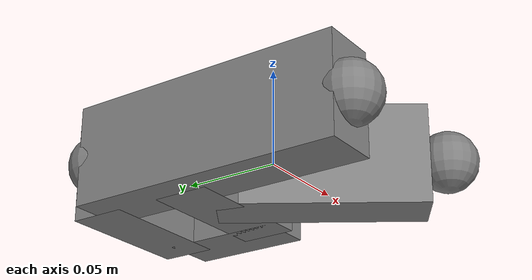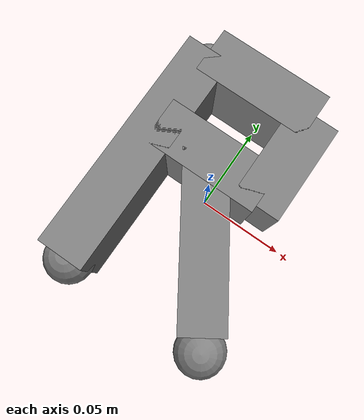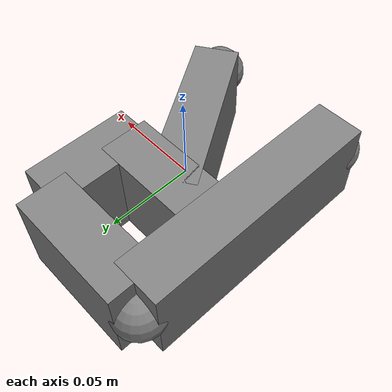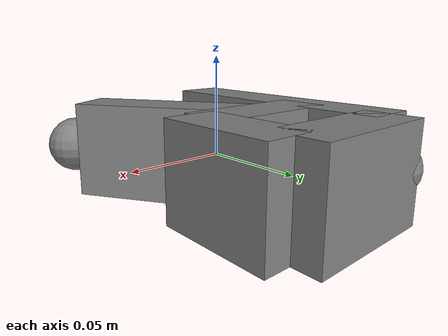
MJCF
<mujoco model="shape_r">
  <worldbody>
    <body name="shape">
      <geom name="stem" type="box" size="0.014 0.07 0.025"
        pos="-0.045 0.0 0.0" />
      <geom name="bowl_top" type="box" size="0.035 0.014 0.025"
        pos="-0.01 0.07 0.0" />
      <geom name="bowl_right" type="box" size="0.014 0.03 0.025"
        pos="0.025 0.04 0.0" />
      <geom name="bowl_bot" type="box" size="0.035 0.014 0.025"
        pos="-0.01 0.02 0.0" />
      <geom name="leg" type="box" size="0.013 0.05 0.025"
        pos="0.0125 -0.02 0.0" quat="0.9588 0 0 0.2840" />
      <site name="attractor_site1" pos="-0.045 0.07 0.0" size="0.015" />
      <site name="attractor_site2" pos="-0.045 -0.07 0.0" size="0.015" />
      <site name="attractor_site3" pos="0.045 -0.07 0.0" size="0.015" />
    </body>
  </worldbody>
</mujoco>
